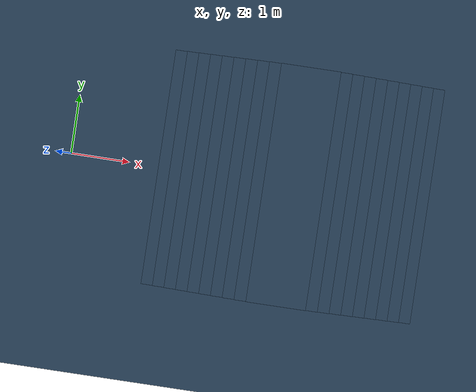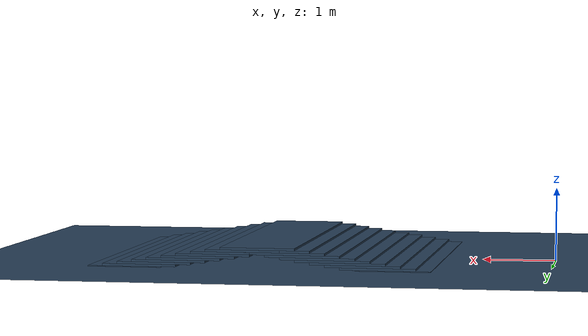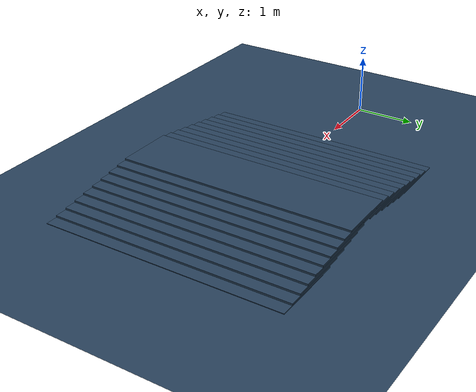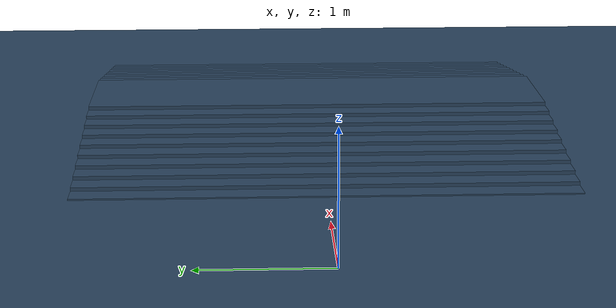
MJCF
<mujoco model="flat">
  <statistic center="0 0 0.55" extent="1.1"/>

  <visual>
    <headlight diffuse="0.6 0.6 0.6" ambient="0.3 0.3 0.3" specular="0 0 0"/>
    <rgba haze="0.15 0.25 0.35 1"/>
    <global azimuth="150" elevation="-20"/>
  </visual>
  <visual>
    <rgba com="0.502 1.0 0 0.5" contactforce="0.98 0.4 0.4 1" contactpoint="1.0 1.0 0.6 0.4"/>
    <scale com="1" forcewidth="0.03" contactwidth="0.01" contactheight="0.02" framewidth="0.05" framelength="0.6"/>
    <map force="0.005"/>
  </visual>
  <asset>
    <texture name="skybox" type="skybox" builtin="gradient" rgb1="0.2 0.3 0.4" rgb2="0 0 0" width="1000" height="1000" mark="random" random="0.001" markrgb="1 1 1"/>
    <texture type="2d" name="groundplane" builtin="checker" mark="edge" rgb1="0.2 0.3 0.4" rgb2="0.1 0.2 0.3" markrgb="0.8 0.8 0.8" width="1000" height="1000"/>
    <material name="stair_material" texture="groundplane" texuniform="true" texrepeat="5 5" reflectance="0.2"/>
    <material name="groundplane" texture="groundplane" texuniform="true" texrepeat="5 5" reflectance="0.2"/>
  </asset>

  <worldbody>
    <light pos="0 0 10" dir="0 0 -1" directional="true"/>
    <geom name="floor" size="0 3 .125" pos="0 0 0.04" type="plane" material="groundplane" conaffinity="7" condim="3" friction="1"/>
    <geom name="step_up1" type="box" size="0.5 2 0.015" pos="2.0 0 0.03" material="stair_material" conaffinity="7" condim="3" friction="1"/>
    <geom name="step_up2" type="box" size="0.5 2 0.015" pos="2.2 0 0.06" material="stair_material" conaffinity="7" condim="3" friction="1"/>
    <geom name="step_up3" type="box" size="0.5 2 0.015" pos="2.4 0 0.09" material="stair_material" conaffinity="7" condim="3" friction="1"/>
    <geom name="step_up4" type="box" size="0.5 2 0.015" pos="2.6 0 0.12" material="stair_material" conaffinity="7" condim="3" friction="1"/>
    <geom name="step_up5" type="box" size="0.5 2 0.015" pos="2.8 0 0.15" material="stair_material" conaffinity="7" condim="3" friction="1"/>
    <geom name="step_up6" type="box" size="0.5 2 0.015" pos="3.0 0 0.18" material="stair_material" conaffinity="7" condim="3" friction="1"/>
    <geom name="step_up7" type="box" size="0.5 2 0.015" pos="3.2 0 0.21" material="stair_material" conaffinity="7" condim="3" friction="1"/>
    <geom name="step_up8" type="box" size="0.5 2 0.015" pos="3.4000000000000004 0 0.24" material="stair_material" conaffinity="7" condim="3" friction="1"/>
    <geom name="step_up9" type="box" size="0.5 2 0.015" pos="3.6 0 0.27" material="stair_material" conaffinity="7" condim="3" friction="1"/>
    <geom name="step_up10" type="box" size="0.5 2 0.015" pos="3.8 0 0.3" material="stair_material" conaffinity="7" condim="3" friction="1"/>
    <geom name="step_down1" type="box" size="0.5 2 0.015" pos="4.0 0 0.27" material="stair_material" conaffinity="7" condim="3" friction="1"/>
    <geom name="step_down2" type="box" size="0.5 2 0.015" pos="4.2 0 0.24" material="stair_material" conaffinity="7" condim="3" friction="1"/>
    <geom name="step_down3" type="box" size="0.5 2 0.015" pos="4.4 0 0.21" material="stair_material" conaffinity="7" condim="3" friction="1"/>
    <geom name="step_down4" type="box" size="0.5 2 0.015" pos="4.6 0 0.18" material="stair_material" conaffinity="7" condim="3" friction="1"/>
    <geom name="step_down5" type="box" size="0.5 2 0.015" pos="4.8 0 0.15" material="stair_material" conaffinity="7" condim="3" friction="1"/>
    <geom name="step_down6" type="box" size="0.5 2 0.015" pos="5.0 0 0.12" material="stair_material" conaffinity="7" condim="3" friction="1"/>
    <geom name="step_down7" type="box" size="0.5 2 0.015" pos="5.2 0 0.09" material="stair_material" conaffinity="7" condim="3" friction="1"/>
    <geom name="step_down8" type="box" size="0.5 2 0.015" pos="5.4 0 0.06" material="stair_material" conaffinity="7" condim="3" friction="1"/>
    <geom name="step_down9" type="box" size="0.5 2 0.015" pos="5.6 0 0.03" material="stair_material" conaffinity="7" condim="3" friction="1"/>
    <geom name="step_down10" type="box" size="0.5 2 0.015" pos="5.8 0 0.0" material="stair_material" conaffinity="7" condim="3" friction="1"/>
  </worldbody>
</mujoco>
